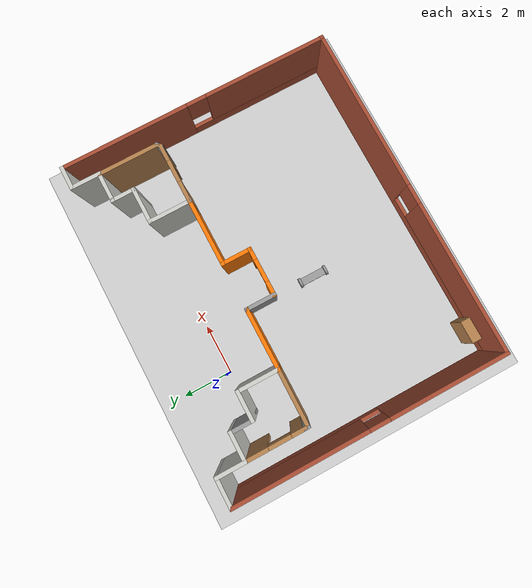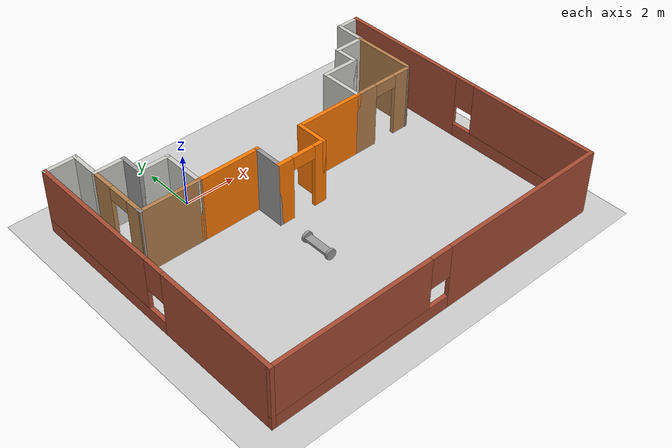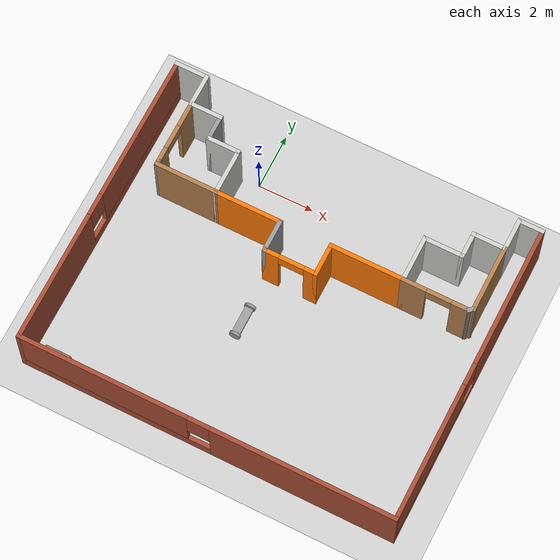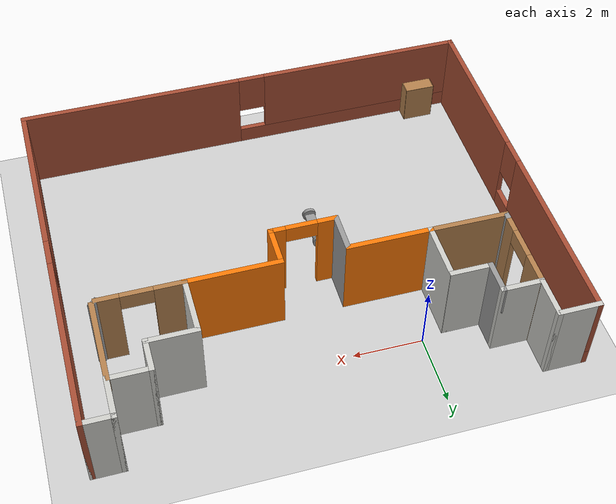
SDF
<sdf version="1.6">
 <world name="default">
  <model name="ground_plane">
   <static>1</static>
   <link name="link">
    <collision name="collision">
     <geometry><plane><normal>0 0 1</normal><size>100 100</size></plane></geometry>
     <surface><friction><ode><mu>100</mu><mu2>50</mu2></ode></friction></surface>
    </collision>
    <visual name="visual">
     <cast_shadows>0</cast_shadows>
     <geometry><plane><normal>0 0 1</normal><size>100 100</size></plane></geometry>
     <material>
      <script><uri>file://media/materials/scripts/gazebo.material</uri><name>Gazebo/Grey</name></script>
     </material>
    </visual>
   </link>
  </model>
  <model name="Building">
   <pose>2.73872 -3.65491 0 0 -0 0</pose>
   <link name="Wall_0">
    <pose>-6.7 0 0 0 -0 1.5708</pose>
    <visual name="Wall_0_Visual_0">
     <pose>-3.10618 0 1.25 0 -0 0</pose>
     <geometry><box><size>4.78763 0.15 2.5</size></box></geometry>
     <material>
      <script><uri>file://media/materials/scripts/gazebo.material</uri><name>Gazebo/Bricks</name></script>
      <ambient>1 1 1 1</ambient>
     </material>
    </visual>
    <collision name="Wall_0_Collision_0">
     <geometry><box><size>4.78763 0.15 2.5</size></box></geometry>
     <pose>-3.10618 0 1.25 0 -0 0</pose>
    </collision>
    <visual name="Wall_0_Visual_1">
     <pose>2.39382 0 0.25 0 -0 0</pose>
     <geometry><box><size>6.21237 0.15 0.5</size></box></geometry>
     <material>
      <script><uri>file://media/materials/scripts/gazebo.material</uri><name>Gazebo/Bricks</name></script>
      <ambient>1 1 1 1</ambient>
     </material>
    </visual>
    <collision name="Wall_0_Collision_1">
     <geometry><box><size>6.21237 0.15 0.5</size></box></geometry>
     <pose>2.39382 0 0.25 0 -0 0</pose>
    </collision>
    <visual name="Wall_0_Visual_2">
     <pose>2.79382 0 1.5 0 -0 0</pose>
     <geometry><box><size>5.41237 0.15 2</size></box></geometry>
     <material>
      <script><uri>file://media/materials/scripts/gazebo.material</uri><name>Gazebo/Bricks</name></script>
      <ambient>1 1 1 1</ambient>
     </material>
    </visual>
    <collision name="Wall_0_Collision_2">
     <geometry><box><size>5.41237 0.15 2</size></box></geometry>
     <pose>2.79382 0 1.5 0 -0 0</pose>
    </collision>
    <visual name="Wall_0_Visual_3">
     <pose>-0.312368 0 1.9 0 -0 0</pose>
     <geometry><box><size>0.8 0.15 1.2</size></box></geometry>
     <material>
      <script><uri>file://media/materials/scripts/gazebo.material</uri><name>Gazebo/Bricks</name></script>
      <ambient>1 1 1 1</ambient>
     </material>
    </visual>
    <collision name="Wall_0_Collision_3">
     <geometry><box><size>0.8 0.15 1.2</size></box></geometry>
     <pose>-0.312368 0 1.9 0 -0 0</pose>
    </collision>
   </link>
   <link name="Wall_1">
    <collision name="Wall_1_Collision">
     <geometry><box><size>1.26323 0.15 2.5</size></box></geometry>
     <pose>0 0 1.25 0 -0 0</pose>
    </collision>
    <visual name="Wall_1_Visual">
     <pose>0 0 1.25 0 -0 0</pose>
     <geometry><box><size>1.26323 0.15 2.5</size></box></geometry>
     <material>
      <script><uri>file://media/materials/scripts/gazebo.material</uri><name>Gazebo/CeilingTiled</name></script>
      <ambient>1 1 1 1</ambient>
     </material>
    </visual>
    <pose>-6.14339 5.425 0 0 -0 0</pose>
   </link>
   <link name="Wall_10">
    <collision name="Wall_10_Collision">
     <geometry><box><size>1.25 0.15 2.5</size></box></geometry>
     <pose>0 0 1.25 0 -0 0</pose>
    </collision>
    <visual name="Wall_10_Visual">
     <pose>0 0 1.25 0 -0 0</pose>
     <geometry><box><size>1.25 0.15 2.5</size></box></geometry>
     <material>
      <script><uri>file://media/materials/scripts/gazebo.material</uri><name>Gazebo/Grey</name></script>
      <ambient>0.996078 0.47451 0.0196078 1</ambient>
     </material>
    </visual>
    <pose>0.8 1.325 0 0 -0 1.5708</pose>
   </link>
   <link name="Wall_11">
    <collision name="Wall_11_Collision">
     <geometry><box><size>2.75 0.15 2.5</size></box></geometry>
     <pose>0 0 1.25 0 -0 0</pose>
    </collision>
    <visual name="Wall_11_Visual">
     <pose>0 0 1.25 0 -0 0</pose>
     <geometry><box><size>2.75 0.15 2.5</size></box></geometry>
     <material>
      <script><uri>file://media/materials/scripts/gazebo.material</uri><name>Gazebo/Grey</name></script>
      <ambient>0.996078 0.47451 0.0196078 1</ambient>
     </material>
    </visual>
    <pose>2.1 1.875 0 0 -0 0</pose>
   </link>
   <link name="Wall_12">
    <collision name="Wall_12_Collision">
     <geometry><box><size>1.75 0.15 2.5</size></box></geometry>
     <pose>0 0 1.25 0 -0 0</pose>
    </collision>
    <visual name="Wall_12_Visual">
     <pose>0 0 1.25 0 -0 0</pose>
     <geometry><box><size>1.75 0.15 2.5</size></box></geometry>
     <material>
      <script><uri>file://media/materials/scripts/gazebo.material</uri><name>Gazebo/CeilingTiled</name></script>
      <ambient>1 0.764706 0.305882 1</ambient>
     </material>
    </visual>
    <pose>3.4 2.675 0 0 -0 1.5708</pose>
   </link>
   <link name="Wall_13">
    <collision name="Wall_13_Collision">
     <geometry><box><size>1.5 0.15 2.5</size></box></geometry>
     <pose>0 0 1.25 0 -0 0</pose>
    </collision>
    <visual name="Wall_13_Visual">
     <pose>0 0 1.25 0 -0 0</pose>
     <geometry><box><size>1.5 0.15 2.5</size></box></geometry>
     <material>
      <script><uri>file://media/materials/scripts/gazebo.material</uri><name>Gazebo/CeilingTiled</name></script>
      <ambient>1 1 1 1</ambient>
     </material>
    </visual>
    <pose>4.075 3.475 0 0 -0 0</pose>
   </link>
   <link name="Wall_14">
    <collision name="Wall_14_Collision">
     <geometry><box><size>1 0.15 2.5</size></box></geometry>
     <pose>0 0 1.25 0 -0 0</pose>
    </collision>
    <visual name="Wall_14_Visual">
     <pose>0 0 1.25 0 -0 0</pose>
     <geometry><box><size>1 0.15 2.5</size></box></geometry>
     <material>
      <script><uri>file://media/materials/scripts/gazebo.material</uri><name>Gazebo/CeilingTiled</name></script>
      <ambient>1 1 1 1</ambient>
     </material>
    </visual>
    <pose>4.75 3.9 0 0 -0 1.5708</pose>
   </link>
   <link name="Wall_15">
    <collision name="Wall_15_Collision">
     <geometry><box><size>1.273 0.15 2.5</size></box></geometry>
     <pose>0 0 1.25 0 -0 0</pose>
    </collision>
    <visual name="Wall_15_Visual">
     <pose>0 0 1.25 0 -0 0</pose>
     <geometry><box><size>1.273 0.15 2.5</size></box></geometry>
     <material>
      <script><uri>file://media/materials/scripts/gazebo.material</uri><name>Gazebo/CeilingTiled</name></script>
      <ambient>1 1 1 1</ambient>
     </material>
    </visual>
    <pose>5.3115 4.325 0 0 -0 0</pose>
   </link>
   <link name="Wall_16">
    <collision name="Wall_16_Collision">
     <geometry><box><size>1.25 0.15 2.5</size></box></geometry>
     <pose>0 0 1.25 0 -0 0</pose>
    </collision>
    <visual name="Wall_16_Visual">
     <pose>0 0 1.25 0 -0 0</pose>
     <geometry><box><size>1.25 0.15 2.5</size></box></geometry>
     <material>
      <script><uri>file://media/materials/scripts/gazebo.material</uri><name>Gazebo/CeilingTiled</name></script>
      <ambient>1 1 1 1</ambient>
     </material>
    </visual>
    <pose>5.873 4.875 0 0 -0 1.5708</pose>
   </link>
   <link name="Wall_17">
    <collision name="Wall_17_Collision">
     <geometry><box><size>0.977 0.15 2.5</size></box></geometry>
     <pose>0 0 1.25 0 -0 0</pose>
    </collision>
    <visual name="Wall_17_Visual">
     <pose>0 0 1.25 0 -0 0</pose>
     <geometry><box><size>0.977 0.15 2.5</size></box></geometry>
     <material>
      <script><uri>file://media/materials/scripts/gazebo.material</uri><name>Gazebo/CeilingTiled</name></script>
      <ambient>1 1 1 1</ambient>
     </material>
    </visual>
    <pose>6.2865 5.425 0 0 -0 0</pose>
   </link>
   <link name="Wall_18">
    <pose>6.7 0 0 0 0 -1.5708</pose>
    <visual name="Wall_18_Visual_0">
     <pose>-2.90947 0 1.25 0 -0 0</pose>
     <geometry><box><size>5.18106 0.15 2.5</size></box></geometry>
     <material>
      <script><uri>file://media/materials/scripts/gazebo.material</uri><name>Gazebo/Bricks</name></script>
      <ambient>1 1 1 1</ambient>
     </material>
    </visual>
    <collision name="Wall_18_Collision_0">
     <geometry><box><size>5.18106 0.15 2.5</size></box></geometry>
     <pose>-2.90947 0 1.25 0 -0 0</pose>
    </collision>
    <visual name="Wall_18_Visual_1">
     <pose>2.59053 0 0.25 0 -0 0</pose>
     <geometry><box><size>5.81894 0.15 0.5</size></box></geometry>
     <material>
      <script><uri>file://media/materials/scripts/gazebo.material</uri><name>Gazebo/Bricks</name></script>
      <ambient>1 1 1 1</ambient>
     </material>
    </visual>
    <collision name="Wall_18_Collision_1">
     <geometry><box><size>5.81894 0.15 0.5</size></box></geometry>
     <pose>2.59053 0 0.25 0 -0 0</pose>
    </collision>
    <visual name="Wall_18_Visual_2">
     <pose>2.99053 0 1.5 0 -0 0</pose>
     <geometry><box><size>5.01894 0.15 2</size></box></geometry>
     <material>
      <script><uri>file://media/materials/scripts/gazebo.material</uri><name>Gazebo/Bricks</name></script>
      <ambient>1 1 1 1</ambient>
     </material>
    </visual>
    <collision name="Wall_18_Collision_2">
     <geometry><box><size>5.01894 0.15 2</size></box></geometry>
     <pose>2.99053 0 1.5 0 -0 0</pose>
    </collision>
    <visual name="Wall_18_Visual_3">
     <pose>0.081062 0 1.9 0 -0 0</pose>
     <geometry><box><size>0.8 0.15 1.2</size></box></geometry>
     <material>
      <script><uri>file://media/materials/scripts/gazebo.material</uri><name>Gazebo/Bricks</name></script>
      <ambient>1 1 1 1</ambient>
     </material>
    </visual>
    <collision name="Wall_18_Collision_3">
     <geometry><box><size>0.8 0.15 1.2</size></box></geometry>
     <pose>0.081062 0 1.9 0 -0 0</pose>
    </collision>
   </link>
   <link name="Wall_19">
    <pose>0 -5.425 0 0 -0 3.14159</pose>
    <visual name="Wall_19_Visual_0">
     <pose>-3.47411 0 1.25 0 -0 0</pose>
     <geometry><box><size>6.60178 0.15 2.5</size></box></geometry>
     <material>
      <script><uri>file://media/materials/scripts/gazebo.material</uri><name>Gazebo/Bricks</name></script>
      <ambient>1 1 1 1</ambient>
     </material>
    </visual>
    <collision name="Wall_19_Collision_0">
     <geometry><box><size>6.60178 0.15 2.5</size></box></geometry>
     <pose>-3.47411 0 1.25 0 -0 0</pose>
    </collision>
    <visual name="Wall_19_Visual_1">
     <pose>3.30089 0 0.25 0 -0 0</pose>
     <geometry><box><size>6.94822 0.15 0.5</size></box></geometry>
     <material>
      <script><uri>file://media/materials/scripts/gazebo.material</uri><name>Gazebo/Bricks</name></script>
      <ambient>1 1 1 1</ambient>
     </material>
    </visual>
    <collision name="Wall_19_Collision_1">
     <geometry><box><size>6.94822 0.15 0.5</size></box></geometry>
     <pose>3.30089 0 0.25 0 -0 0</pose>
    </collision>
    <visual name="Wall_19_Visual_2">
     <pose>3.70089 0 1.5 0 -0 0</pose>
     <geometry><box><size>6.14822 0.15 2</size></box></geometry>
     <material>
      <script><uri>file://media/materials/scripts/gazebo.material</uri><name>Gazebo/Bricks</name></script>
      <ambient>1 1 1 1</ambient>
     </material>
    </visual>
    <collision name="Wall_19_Collision_2">
     <geometry><box><size>6.14822 0.15 2</size></box></geometry>
     <pose>3.70089 0 1.5 0 -0 0</pose>
    </collision>
    <visual name="Wall_19_Visual_3">
     <pose>0.226781 0 1.9 0 -0 0</pose>
     <geometry><box><size>0.8 0.15 1.2</size></box></geometry>
     <material>
      <script><uri>file://media/materials/scripts/gazebo.material</uri><name>Gazebo/Bricks</name></script>
      <ambient>1 1 1 1</ambient>
     </material>
    </visual>
    <collision name="Wall_19_Collision_3">
     <geometry><box><size>0.8 0.15 1.2</size></box></geometry>
     <pose>0.226781 0 1.9 0 -0 0</pose>
    </collision>
   </link>
   <link name="Wall_2">
    <collision name="Wall_2_Collision">
     <geometry><box><size>1.25 0.15 2.5</size></box></geometry>
     <pose>0 0 1.25 0 -0 0</pose>
    </collision>
    <visual name="Wall_2_Visual">
     <pose>0 0 1.25 0 -0 0</pose>
     <geometry><box><size>1.25 0.15 2.5</size></box></geometry>
     <material>
      <script><uri>file://media/materials/scripts/gazebo.material</uri><name>Gazebo/CeilingTiled</name></script>
      <ambient>1 1 1 1</ambient>
     </material>
    </visual>
    <pose>-5.58678 4.875 0 0 0 -1.5708</pose>
   </link>
   <link name="Wall_25">
    <pose>-5.58678 3.16323 0 0 0 -1.5708</pose>
    <visual name="Wall_25_Visual_0">
     <pose>-0.75673 0 1.25 0 -0 0</pose>
     <geometry><box><size>0.986541 0.15 2.5</size></box></geometry>
     <material>
      <script><uri>file://media/materials/scripts/gazebo.material</uri><name>Gazebo/Wood</name></script>
      <ambient>1 1 1 1</ambient>
     </material>
    </visual>
    <collision name="Wall_25_Collision_0">
     <geometry><box><size>0.986541 0.15 2.5</size></box></geometry>
     <pose>-0.75673 0 1.25 0 -0 0</pose>
    </collision>
    <visual name="Wall_25_Visual_1">
     <pose>0.94327 0 1.25 0 -0 0</pose>
     <geometry><box><size>0.613459 0.15 2.5</size></box></geometry>
     <material>
      <script><uri>file://media/materials/scripts/gazebo.material</uri><name>Gazebo/Wood</name></script>
      <ambient>1 1 1 1</ambient>
     </material>
    </visual>
    <collision name="Wall_25_Collision_1">
     <geometry><box><size>0.613459 0.15 2.5</size></box></geometry>
     <pose>0.94327 0 1.25 0 -0 0</pose>
    </collision>
    <visual name="Wall_25_Visual_2">
     <pose>0.186541 0 2.25 0 -0 0</pose>
     <geometry><box><size>0.9 0.15 0.5</size></box></geometry>
     <material>
      <script><uri>file://media/materials/scripts/gazebo.material</uri><name>Gazebo/Wood</name></script>
      <ambient>1 1 1 1</ambient>
     </material>
    </visual>
    <collision name="Wall_25_Collision_2">
     <geometry><box><size>0.9 0.15 0.5</size></box></geometry>
     <pose>0.186541 0 2.25 0 -0 0</pose>
    </collision>
   </link>
   <link name="Wall_27">
    <collision name="Wall_27_Collision">
     <geometry><box><size>0.25 0.15 2.5</size></box></geometry>
     <pose>0 0 1.25 0 -0 0</pose>
    </collision>
    <visual name="Wall_27_Visual">
     <pose>0 0 1.25 0 -0 0</pose>
     <geometry><box><size>0.25 0.15 2.5</size></box></geometry>
     <material>
      <script><uri>file://media/materials/scripts/gazebo.material</uri><name>Gazebo/Grey</name></script>
      <ambient>1 1 1 1</ambient>
     </material>
    </visual>
    <pose>-5.58678 1.93823 0 0 0 -1.5708</pose>
   </link>
   <link name="Wall_28">
    <collision name="Wall_28_Collision">
     <geometry><box><size>2.33682 0.15 2.5</size></box></geometry>
     <pose>0 0 1.25 0 -0 0</pose>
    </collision>
    <visual name="Wall_28_Visual">
     <pose>0 0 1.25 0 -0 0</pose>
     <geometry><box><size>2.33682 0.15 2.5</size></box></geometry>
     <material>
      <script><uri>file://media/materials/scripts/gazebo.material</uri><name>Gazebo/Wood</name></script>
      <ambient>1 1 1 1</ambient>
     </material>
    </visual>
    <pose>-4.49339 1.88161 0 0 0 -0.006048</pose>
   </link>
   <link name="Wall_3">
    <collision name="Wall_3_Collision">
     <geometry><box><size>1.2371 0.15 2.5</size></box></geometry>
     <pose>0 0 1.25 0 -0 0</pose>
    </collision>
    <visual name="Wall_3_Visual">
     <pose>0 0 1.25 0 -0 0</pose>
     <geometry><box><size>1.2371 0.15 2.5</size></box></geometry>
     <material>
      <script><uri>file://media/materials/scripts/gazebo.material</uri><name>Gazebo/CeilingTiled</name></script>
      <ambient>1 1 1 1</ambient>
     </material>
    </visual>
    <pose>-5.04339 4.325 0 0 -0 0</pose>
   </link>
   <link name="Wall_31">
    <collision name="Wall_31_Collision">
     <geometry><box><size>2.5 0.15 2.5</size></box></geometry>
     <pose>0 0 1.25 0 -0 0</pose>
    </collision>
    <visual name="Wall_31_Visual">
     <pose>0 0 1.25 0 -0 0</pose>
     <geometry><box><size>2.5 0.15 2.5</size></box></geometry>
     <material>
      <script><uri>file://media/materials/scripts/gazebo.material</uri><name>Gazebo/Wood</name></script>
      <ambient>1 1 1 1</ambient>
     </material>
    </visual>
    <pose>5.8615 3.15 0 0 -0 1.5708</pose>
   </link>
   <link name="Wall_33">
    <pose>4.575 1.875 0 0 -0 0</pose>
    <visual name="Wall_33_Visual_0">
     <pose>-0.797379 0 1.25 0 -0 0</pose>
     <geometry><box><size>0.905241 0.15 2.5</size></box></geometry>
     <material>
      <script><uri>file://media/materials/scripts/gazebo.material</uri><name>Gazebo/Wood</name></script>
      <ambient>1 1 1 1</ambient>
     </material>
    </visual>
    <collision name="Wall_33_Collision_0">
     <geometry><box><size>0.905241 0.15 2.5</size></box></geometry>
     <pose>-0.797379 0 1.25 0 -0 0</pose>
    </collision>
    <visual name="Wall_33_Visual_1">
     <pose>0.902621 0 1.25 0 -0 0</pose>
     <geometry><box><size>0.694759 0.15 2.5</size></box></geometry>
     <material>
      <script><uri>file://media/materials/scripts/gazebo.material</uri><name>Gazebo/Wood</name></script>
      <ambient>1 1 1 1</ambient>
     </material>
    </visual>
    <collision name="Wall_33_Collision_1">
     <geometry><box><size>0.694759 0.15 2.5</size></box></geometry>
     <pose>0.902621 0 1.25 0 -0 0</pose>
    </collision>
    <visual name="Wall_33_Visual_2">
     <pose>0.105241 0 2.25 0 -0 0</pose>
     <geometry><box><size>0.9 0.15 0.5</size></box></geometry>
     <material>
      <script><uri>file://media/materials/scripts/gazebo.material</uri><name>Gazebo/Wood</name></script>
      <ambient>1 1 1 1</ambient>
     </material>
    </visual>
    <collision name="Wall_33_Collision_2">
     <geometry><box><size>0.9 0.15 0.5</size></box></geometry>
     <pose>0.105241 0 2.25 0 -0 0</pose>
    </collision>
   </link>
   <link name="Wall_36">
    <collision name="Wall_36_Collision">
     <geometry><box><size>0.299774 0.15 2.5</size></box></geometry>
     <pose>0 0 1.25 0 -0 0</pose>
    </collision>
    <visual name="Wall_36_Visual">
     <pose>0 0 1.25 0 -0 0</pose>
     <geometry><box><size>0.299774 0.15 2.5</size></box></geometry>
     <material>
      <script><uri>file://media/materials/scripts/gazebo.material</uri><name>Gazebo/Grey</name></script>
      <ambient>1 1 1 1</ambient>
     </material>
    </visual>
    <pose>5.80575 1.925 0 0 0 -2.41052</pose>
   </link>
   <link name="Wall_4">
    <collision name="Wall_4_Collision">
     <geometry><box><size>1 0.15 2.5</size></box></geometry>
     <pose>0 0 1.25 0 -0 0</pose>
    </collision>
    <visual name="Wall_4_Visual">
     <pose>0 0 1.25 0 -0 0</pose>
     <geometry><box><size>1 0.15 2.5</size></box></geometry>
     <material>
      <script><uri>file://media/materials/scripts/gazebo.material</uri><name>Gazebo/Grey</name></script>
      <ambient>1 1 1 1</ambient>
     </material>
    </visual>
    <pose>-4.5 3.9 0 0 0 -1.5708</pose>
   </link>
   <link name="Wall_5">
    <collision name="Wall_5_Collision">
     <geometry><box><size>1.23677 0.15 2.5</size></box></geometry>
     <pose>0 0 1.25 0 -0 0</pose>
    </collision>
    <visual name="Wall_5_Visual">
     <pose>0 0 1.25 0 -0 0</pose>
     <geometry><box><size>1.23677 0.15 2.5</size></box></geometry>
     <material>
      <script><uri>file://media/materials/scripts/gazebo.material</uri><name>Gazebo/CeilingTiled</name></script>
      <ambient>1 1 1 1</ambient>
     </material>
    </visual>
    <pose>-3.95661 3.475 0 0 -0 0</pose>
   </link>
   <link name="Wall_6">
    <collision name="Wall_6_Collision">
     <geometry><box><size>1.75 0.15 2.5</size></box></geometry>
     <pose>0 0 1.25 0 -0 0</pose>
    </collision>
    <visual name="Wall_6_Visual">
     <pose>0 0 1.25 0 -0 0</pose>
     <geometry><box><size>1.75 0.15 2.5</size></box></geometry>
     <material>
      <script><uri>file://media/materials/scripts/gazebo.material</uri><name>Gazebo/CeilingTiled</name></script>
      <ambient>1 0.764706 0.305882 1</ambient>
     </material>
    </visual>
    <pose>-3.4 2.675 0 0 0 -1.5708</pose>
   </link>
   <link name="Wall_7">
    <collision name="Wall_7_Collision">
     <geometry><box><size>2.5 0.15 2.5</size></box></geometry>
     <pose>0 0 1.25 0 -0 0</pose>
    </collision>
    <visual name="Wall_7_Visual">
     <pose>0 0 1.25 0 -0 0</pose>
     <geometry><box><size>2.5 0.15 2.5</size></box></geometry>
     <material>
      <script><uri>file://media/materials/scripts/gazebo.material</uri><name>Gazebo/Grey</name></script>
      <ambient>0.996078 0.47451 0.0196078 1</ambient>
     </material>
    </visual>
    <pose>-2.225 1.875 0 0 -0 0</pose>
   </link>
   <link name="Wall_8">
    <collision name="Wall_8_Collision">
     <geometry><box><size>1.25 0.15 2.5</size></box></geometry>
     <pose>0 0 1.25 0 -0 0</pose>
    </collision>
    <visual name="Wall_8_Visual">
     <pose>0 0 1.25 0 -0 0</pose>
     <geometry><box><size>1.25 0.15 2.5</size></box></geometry>
     <material>
      <script><uri>file://media/materials/scripts/gazebo.material</uri><name>Gazebo/Grey</name></script>
      <ambient>1 1 1 1</ambient>
     </material>
    </visual>
    <pose>-1.05 1.325 0 0 0 -1.5708</pose>
   </link>
   <link name="Wall_9">
    <pose>-0.125 0.775 0 0 -0 0</pose>
    <visual name="Wall_9_Visual_0">
     <pose>-0.694934 0 1.25 0 -0 0</pose>
     <geometry><box><size>0.610133 0.15 2.5</size></box></geometry>
     <material>
      <script><uri>file://media/materials/scripts/gazebo.material</uri><name>Gazebo/Grey</name></script>
      <ambient>0.996078 0.47451 0.0196078 1</ambient>
     </material>
    </visual>
    <collision name="Wall_9_Collision_0">
     <geometry><box><size>0.610133 0.15 2.5</size></box></geometry>
     <pose>-0.694934 0 1.25 0 -0 0</pose>
    </collision>
    <visual name="Wall_9_Visual_1">
     <pose>0.755066 0 1.25 0 -0 0</pose>
     <geometry><box><size>0.489867 0.15 2.5</size></box></geometry>
     <material>
      <script><uri>file://media/materials/scripts/gazebo.material</uri><name>Gazebo/Grey</name></script>
      <ambient>0.996078 0.47451 0.0196078 1</ambient>
     </material>
    </visual>
    <collision name="Wall_9_Collision_1">
     <geometry><box><size>0.489867 0.15 2.5</size></box></geometry>
     <pose>0.755066 0 1.25 0 -0 0</pose>
    </collision>
    <visual name="Wall_9_Visual_2">
     <pose>0.060133 0 2.25 0 -0 0</pose>
     <geometry><box><size>0.9 0.15 0.5</size></box></geometry>
     <material>
      <script><uri>file://media/materials/scripts/gazebo.material</uri><name>Gazebo/Grey</name></script>
      <ambient>0.996078 0.47451 0.0196078 1</ambient>
     </material>
    </visual>
    <collision name="Wall_9_Collision_2">
     <geometry><box><size>0.9 0.15 0.5</size></box></geometry>
     <pose>0.060133 0 2.25 0 -0 0</pose>
    </collision>
   </link>
   <static>1</static>
  </model>
  <model name="bookshelf_clone">
   <static>1</static>
   <link name="link">
    <inertial><mass>1</mass></inertial>
    <collision name="back">
     <pose>0 0.005 0.6 0 -0 0</pose>
     <geometry><box><size>0.9 0.01 1.2</size></box></geometry>
    </collision>
    <visual name="visual1">
     <pose>0 0.005 0.6 0 -0 0</pose>
     <geometry><box><size>0.9 0.01 1.2</size></box></geometry>
     <material>
      <script><uri>file://media/materials/scripts/gazebo.material</uri><name>Gazebo/Wood</name></script>
     </material>
    </visual>
    <collision name="left_side">
     <pose>0.45 -0.195 0.6 0 -0 0</pose>
     <geometry><box><size>0.02 0.4 1.2</size></box></geometry>
    </collision>
    <visual name="visual2">
     <pose>0.45 -0.195 0.6 0 -0 0</pose>
     <geometry><box><size>0.02 0.4 1.2</size></box></geometry>
     <material>
      <script><uri>file://media/materials/scripts/gazebo.material</uri><name>Gazebo/Wood</name></script>
     </material>
    </visual>
    <collision name="right_side">
     <pose>-0.45 -0.195 0.6 0 -0 0</pose>
     <geometry><box><size>0.02 0.4 1.2</size></box></geometry>
    </collision>
    <visual name="visual3">
     <pose>-0.45 -0.195 0.6 0 -0 0</pose>
     <geometry><box><size>0.02 0.4 1.2</size></box></geometry>
     <material>
      <script><uri>file://media/materials/scripts/gazebo.material</uri><name>Gazebo/Wood</name></script>
     </material>
    </visual>
    <collision name="bottom">
     <pose>0 -0.195 0.03 0 -0 0</pose>
     <geometry><box><size>0.88 0.4 0.06</size></box></geometry>
    </collision>
    <visual name="visual4">
     <pose>0 -0.195 0.03 0 -0 0</pose>
     <geometry><box><size>0.88 0.4 0.06</size></box></geometry>
     <material>
      <script><uri>file://media/materials/scripts/gazebo.material</uri><name>Gazebo/Wood</name></script>
     </material>
    </visual>
    <collision name="top">
     <pose>0 -0.195 1.19 0 -0 0</pose>
     <geometry><box><size>0.88 0.4 0.02</size></box></geometry>
    </collision>
    <visual name="visual5">
     <pose>0 -0.195 1.19 0 -0 0</pose>
     <geometry><box><size>0.88 0.4 0.02</size></box></geometry>
     <material>
      <script><uri>file://media/materials/scripts/gazebo.material</uri><name>Gazebo/Wood</name></script>
     </material>
    </visual>
    <collision name="low_shelf">
     <pose>0 -0.195 0.43 0 -0 0</pose>
     <geometry><box><size>0.88 0.4 0.02</size></box></geometry>
    </collision>
    <visual name="visual6">
     <pose>0 -0.195 0.43 0 -0 0</pose>
     <geometry><box><size>0.88 0.4 0.02</size></box></geometry>
     <material>
      <script><uri>file://media/materials/scripts/gazebo.material</uri><name>Gazebo/Wood</name></script>
     </material>
    </visual>
    <collision name="high_shelf">
     <pose>0 -0.195 0.8 0 -0 0</pose>
     <geometry><box><size>0.88 0.4 0.02</size></box></geometry>
    </collision>
    <visual name="visual7">
     <pose>0 -0.195 0.8 0 -0 0</pose>
     <geometry><box><size>0.88 0.4 0.02</size></box></geometry>
     <material>
      <script><uri>file://media/materials/scripts/gazebo.material</uri><name>Gazebo/Wood</name></script>
     </material>
    </visual>
   </link>
   <pose>-2.8944 -8.59159 0 0 -0 0</pose>
  </model>
  <model name="2wlrobot_clone_clone">
   <link name="link_1">
    <pose>-3e-06 2e-06 0 0 -0 0</pose>
    <inertial>
     <mass>1</mass>
     <inertia>
      <ixx>0.166667</ixx>
      <ixy>0</ixy>
      <ixz>0</ixz>
      <iyy>0.166667</iyy>
      <iyz>0</iyz>
      <izz>0.166667</izz>
     </inertia>
    </inertial>
    <visual name="visual">
     <geometry><box><size>0.3 1 0.1</size></box></geometry>
     <material>
      <lighting>1</lighting>
      <script><uri>file://media/materials/scripts/gazebo.material</uri><name>Gazebo/Grey</name></script>
      <ambient>0.3 0.3 0.3 1</ambient>
      <diffuse>0.7 0.7 0.7 1</diffuse>
      <specular>0.01 0.01 0.01 1</specular>
      <emissive>0 0 0 1</emissive>
      <shader type="vertex"><normal_map>__default__</normal_map></shader>
     </material>
    </visual>
    <collision name="collision">
     <geometry><box><size>0.3 1 0.1</size></box></geometry>
     <surface>
      <friction>
       <ode><mu>1</mu><mu2>1</mu2><fdir1>0 0 0</fdir1><slip1>0</slip1><slip2>0</slip2></ode>
       <torsional>
        <coefficient>1</coefficient>
        <patch_radius>0</patch_radius>
        <surface_radius>0</surface_radius>
        <use_patch_radius>1</use_patch_radius>
        <ode><slip>0</slip></ode>
       </torsional>
      </friction>
      <bounce><restitution_coefficient>0</restitution_coefficient><threshold>1e+06</threshold></bounce>
      <contact>
       <collide_without_contact>0</collide_without_contact>
       <collide_without_contact_bitmask>1</collide_without_contact_bitmask>
       <collide_bitmask>1</collide_bitmask>
       <ode>
        <soft_cfm>0</soft_cfm>
        <soft_erp>0.2</soft_erp>
        <kp>1e+13</kp>
        <kd>1</kd>
        <max_vel>0.01</max_vel>
        <min_depth>0</min_depth>
       </ode>
       <bullet>
        <split_impulse>1</split_impulse>
        <split_impulse_penetration_threshold>-0.01</split_impulse_penetration_threshold>
        <soft_cfm>0</soft_cfm>
        <soft_erp>0.2</soft_erp>
        <kp>1e+13</kp>
        <kd>1</kd>
       </bullet>
      </contact>
     </surface>
    </collision>
   </link>
   <link name="link_2">
    <pose>-3e-06 -0.550157 0 1.57 -0 0</pose>
    <inertial>
     <mass>1</mass>
     <inertia><ixx>0.145833</ixx><ixy>0</ixy><ixz>0</ixz><iyy>0.145833</iyy><iyz>0</iyz><izz>0.125</izz></inertia>
     <pose>0 0 0.2 1.57 -0 0</pose>
    </inertial>
    <visual name="visual">
     <geometry><cylinder><radius>0.2</radius><length>0.1</length></cylinder></geometry>
     <material>
      <lighting>1</lighting>
      <script><uri>file://media/materials/scripts/gazebo.material</uri><name>Gazebo/Grey</name></script>
      <ambient>0.3 0.3 0.3 1</ambient>
      <diffuse>0.7 0.7 0.7 1</diffuse>
      <specular>0.01 0.01 0.01 1</specular>
      <emissive>0 0 0 1</emissive>
      <shader type="vertex"><normal_map>__default__</normal_map></shader>
     </material>
    </visual>
    <collision name="collision">
     <geometry><cylinder><radius>0.2</radius><length>0.1</length></cylinder></geometry>
     <surface>
      <friction>
       <ode><mu>1</mu><mu2>1</mu2><fdir1>0 0 0</fdir1><slip1>0</slip1><slip2>0</slip2></ode>
       <torsional>
        <coefficient>1</coefficient>
        <patch_radius>0</patch_radius>
        <surface_radius>0</surface_radius>
        <use_patch_radius>1</use_patch_radius>
        <ode><slip>0</slip></ode>
       </torsional>
      </friction>
      <bounce><restitution_coefficient>0</restitution_coefficient><threshold>1e+06</threshold></bounce>
      <contact>
       <collide_without_contact>0</collide_without_contact>
       <collide_without_contact_bitmask>1</collide_without_contact_bitmask>
       <collide_bitmask>1</collide_bitmask>
       <ode>
        <soft_cfm>0</soft_cfm>
        <soft_erp>0.2</soft_erp>
        <kp>1e+13</kp>
        <kd>1</kd>
        <max_vel>0.01</max_vel>
        <min_depth>0</min_depth>
       </ode>
       <bullet>
        <split_impulse>1</split_impulse>
        <split_impulse_penetration_threshold>-0.01</split_impulse_penetration_threshold>
        <soft_cfm>0</soft_cfm>
        <soft_erp>0.2</soft_erp>
        <kp>1e+13</kp>
        <kd>1</kd>
       </bullet>
      </contact>
     </surface>
    </collision>
   </link>
   <link name="link_2_clone">
    <pose>-3e-06 0.550162 0 1.57 -0 0</pose>
    <inertial>
     <mass>1</mass>
     <inertia><ixx>0.145833</ixx><ixy>0</ixy><ixz>0</ixz><iyy>0.145833</iyy><iyz>0</iyz><izz>0.125</izz></inertia>
     <pose>0 0 0.2 1.57 -0 0</pose>
    </inertial>
    <visual name="visual">
     <geometry><cylinder><radius>0.2</radius><length>0.1</length></cylinder></geometry>
     <material>
      <lighting>1</lighting>
      <script><uri>file://media/materials/scripts/gazebo.material</uri><name>Gazebo/Grey</name></script>
      <ambient>0.3 0.3 0.3 1</ambient>
      <diffuse>0.7 0.7 0.7 1</diffuse>
      <specular>0.01 0.01 0.01 1</specular>
      <emissive>0 0 0 1</emissive>
      <shader type="vertex"><normal_map>__default__</normal_map></shader>
     </material>
    </visual>
    <collision name="collision">
     <geometry><cylinder><radius>0.2</radius><length>0.1</length></cylinder></geometry>
     <surface>
      <friction>
       <ode><mu>1</mu><mu2>1</mu2><fdir1>0 0 0</fdir1><slip1>0</slip1><slip2>0</slip2></ode>
       <torsional>
        <coefficient>1</coefficient>
        <patch_radius>0</patch_radius>
        <surface_radius>0</surface_radius>
        <use_patch_radius>1</use_patch_radius>
        <ode><slip>0</slip></ode>
       </torsional>
      </friction>
      <bounce><restitution_coefficient>0</restitution_coefficient><threshold>1e+06</threshold></bounce>
      <contact>
       <collide_without_contact>0</collide_without_contact>
       <collide_without_contact_bitmask>1</collide_without_contact_bitmask>
       <collide_bitmask>1</collide_bitmask>
       <ode>
        <soft_cfm>0</soft_cfm>
        <soft_erp>0.2</soft_erp>
        <kp>1e+13</kp>
        <kd>1</kd>
        <max_vel>0.01</max_vel>
        <min_depth>0</min_depth>
       </ode>
       <bullet>
        <split_impulse>1</split_impulse>
        <split_impulse_penetration_threshold>-0.01</split_impulse_penetration_threshold>
        <soft_cfm>0</soft_cfm>
        <soft_erp>0.2</soft_erp>
        <kp>1e+13</kp>
        <kd>1</kd>
       </bullet>
      </contact>
     </surface>
    </collision>
   </link>
   <joint name="link_1_JOINT_0" type="revolute">
    <parent>link_1</parent>
    <child>link_2</child>
    <axis>
     <xyz>0 0 1</xyz>
     <use_parent_model_frame>0</use_parent_model_frame>
     <limit>
      <lower>-1.79769e+308</lower>
      <upper>1.79769e+308</upper>
      <effort>-1</effort>
      <velocity>-1</velocity>
     </limit>
     <dynamics>
      <spring_reference>0</spring_reference>
      <spring_stiffness>0</spring_stiffness>
      <damping>0</damping>
     </dynamics>
    </axis>
    <physics>
     <ode><limit><cfm>0</cfm><erp>0.2</erp></limit><suspension><cfm>0</cfm><erp>0.2</erp></suspension></ode>
    </physics>
   </joint>
   <joint name="link_1_JOINT_1" type="revolute">
    <parent>link_1</parent>
    <child>link_2_clone</child>
    <axis>
     <xyz>0 0 1</xyz>
     <use_parent_model_frame>0</use_parent_model_frame>
     <limit>
      <lower>-1.79769e+308</lower>
      <upper>1.79769e+308</upper>
      <effort>-1</effort>
      <velocity>-1</velocity>
     </limit>
     <dynamics>
      <spring_reference>0</spring_reference>
      <spring_stiffness>0</spring_stiffness>
      <damping>0</damping>
     </dynamics>
    </axis>
    <physics>
     <ode><limit><cfm>0</cfm><erp>0.2</erp></limit><suspension><cfm>0</cfm><erp>0.2</erp></suspension></ode>
    </physics>
   </joint>
   <static>0</static>
   <pose>1.75946 -4.64552 0.200037 4e-06 -0 0</pose>
  </model>
 </world>
</sdf>
